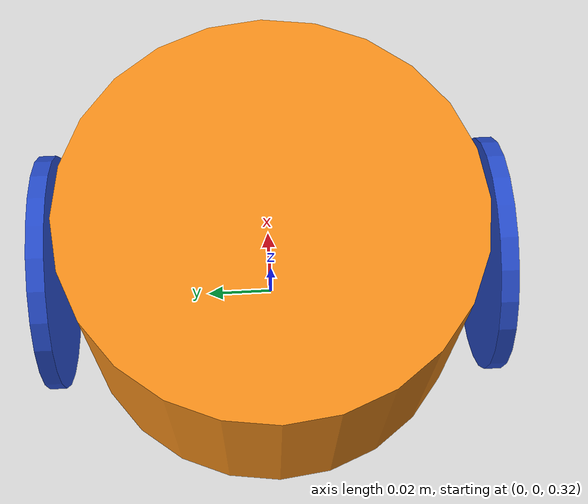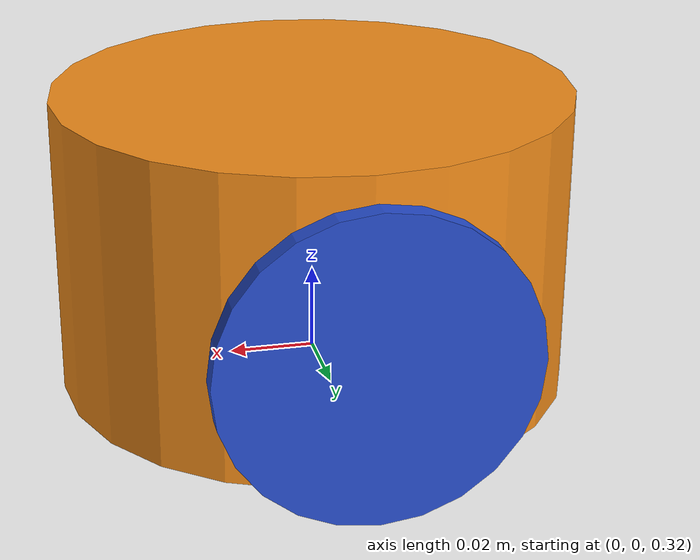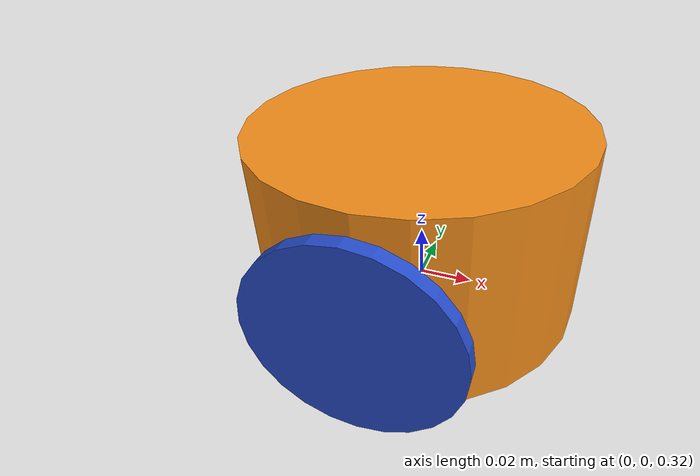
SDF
<?xml version="1.0" ?>
<sdf version="1.8">
  <world name="demo">
    <plugin
      filename="gz-sim-physics-system"
      name="gz::sim::systems::Physics">
    </plugin>
    <plugin
      filename="gz-sim-sensors-system"
      name="gz::sim::systems::Sensors">
      <render_engine>ogre2</render_engine>
    </plugin>
    <plugin
      filename="gz-sim-scene-broadcaster-system"
      name="gz::sim::systems::SceneBroadcaster">
    </plugin>
    <plugin
      filename="gz-sim-user-commands-system"
      name="gz::sim::systems::UserCommands">
    </plugin>
    <plugin
      filename="BasicSystem"
      name="ros_gz_example_gazebo::BasicSystem">
    </plugin>
    <plugin
      filename="FullSystem"
      name="ros_gz_example_gazebo::FullSystem">
    </plugin>

    <light name="sun" type="directional">
      <cast_shadows>true</cast_shadows>
      <pose>0 0 10 0 0 0</pose>
      <diffuse>0.8 0.8 0.8 1</diffuse>
      <specular>0.2 0.2 0.2 1</specular>
      <attenuation>
        <range>1000</range>
        <constant>0.9</constant>
        <linear>0.01</linear>
        <quadratic>0.001</quadratic>
      </attenuation>
      <direction>-0.5 0.1 -0.9</direction>
    </light>

    <model name="ground_plane">
      <static>true</static>
      <link name="link">
        <collision name="collision">
          <geometry>
            <plane>
              <normal>0 0 1</normal>
              <size>100 100</size>
            </plane>
          </geometry>
        </collision>
        <visual name="visual">
          <geometry>
            <plane>
              <normal>0 0 1</normal>
              <size>100 100</size>
            </plane>
          </geometry>
          <material>
            <ambient>0.8 0.8 0.8 1</ambient>
            <diffuse>0.8 0.8 0.8 1</diffuse>
            <specular>0.8 0.8 0.8 1</specular>
          </material>
        </visual>
      </link>
    </model>

    <model name="diff_drive">
      <self_collide>true</self_collide>
      <pose>0 0 0.35 0 0 0</pose>
      <include merge="true">
        <uri>package://kabot_description/models/diff_drive</uri>
      </include>

      <plugin
        filename="gz-sim-joint-state-publisher-system"
        name="gz::sim::systems::JointStatePublisher">
      </plugin>

      <plugin
        filename="gz-sim-pose-publisher-system"
        name="gz::sim::systems::PosePublisher">
        <publish_link_pose>true</publish_link_pose>
        <use_pose_vector_msg>true</use_pose_vector_msg>
        <static_publisher>true</static_publisher>
        <static_update_frequency>1</static_update_frequency>
      </plugin>

      <plugin
        filename="gz-sim-odometry-publisher-system"
        name="gz::sim::systems::OdometryPublisher">
        <odom_frame>diff_drive/odom</odom_frame>
        <robot_base_frame>diff_drive</robot_base_frame>
      </plugin>
    </model>

  </world>
</sdf>

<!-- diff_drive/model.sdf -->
<sdf version='1.11'>
  <model name='kabot'>
    <link name='base_link'>
      <inertial>
        <pose>0 0 0 0 0 0</pose>
        <mass>0.10000000000000001</mass>
        <inertia>
          <ixx>0.00013083333333333331</ixx>
          <ixy>0</ixy>
          <ixz>0</ixz>
          <iyy>0.00013083333333333331</iyy>
          <iyz>0</iyz>
          <izz>0.00018000000000000001</izz>
        </inertia>
      </inertial>
      <collision name='base_link_fixed_joint_lump__chassis_link_collision'>
        <pose>0 0 0 0 0 0</pose>
        <geometry>
          <cylinder>
            <length>0.070000000000000007</length>
            <radius>0.059999999999999998</radius>
          </cylinder>
        </geometry>
        <surface>
          <contact>
            <ode/>
          </contact>
          <friction>
            <ode/>
          </friction>
        </surface>
      </collision>
      <visual name='base_link_fixed_joint_lump__chassis_link_visual'>
        <pose>0 0 0 0 0 0</pose>
        <geometry>
          <cylinder>
            <length>0.070000000000000007</length>
            <radius>0.059999999999999998</radius>
          </cylinder>
        </geometry>
        <material>
          <script>
            <name>Gazebo/Orange</name>
            <uri>file://media/materials/scripts/gazebo.material</uri>
          </script>
          <diffuse>1 1 1 1</diffuse>
          <ambient>1 1 1 1</ambient>
        </material>
      </visual>
    </link>
    <joint name='left_wheel_joint' type='revolute'>
      <pose relative_to='base_link'>0 0.065000000000000002 -0.0050000000000000001 -1.5707963267948959 0 0</pose>
      <parent>base_link</parent>
      <child>left_wheel_link</child>
      <axis>
        <xyz>0 0 1</xyz>
        <limit>
          <lower>-inf</lower>
          <upper>inf</upper>
        </limit>
        <dynamics>
          <spring_reference>0</spring_reference>
          <spring_stiffness>0</spring_stiffness>
        </dynamics>
      </axis>
    </joint>
    <link name='left_wheel_link'>
      <pose relative_to='left_wheel_joint'>0 0 0 0 0 0</pose>
      <inertial>
        <pose>0 0 0 0 0 0</pose>
        <mass>0.10000000000000001</mass>
        <inertia>
          <ixx>3.0833333333333342e-05</ixx>
          <ixy>0</ixy>
          <ixz>0</ixz>
          <iyy>3.0833333333333342e-05</iyy>
          <iyz>0</iyz>
          <izz>6.1250000000000012e-05</izz>
        </inertia>
      </inertial>
      <collision name='left_wheel_link_collision'>
        <pose>0 0 0 0 0 0</pose>
        <geometry>
          <cylinder>
            <length>0.0050000000000000001</length>
            <radius>0.035000000000000003</radius>
          </cylinder>
        </geometry>
        <surface>
          <contact>
            <ode/>
          </contact>
          <friction>
            <ode/>
          </friction>
        </surface>
      </collision>
      <visual name='left_wheel_link_visual'>
        <pose>0 0 0 0 0 0</pose>
        <geometry>
          <cylinder>
            <length>0.0050000000000000001</length>
            <radius>0.035000000000000003</radius>
          </cylinder>
        </geometry>
        <material>
          <script>
            <name>Gazebo/Blue</name>
            <uri>file://media/materials/scripts/gazebo.material</uri>
          </script>
          <diffuse>0 0 1 1</diffuse>
          <ambient>0 0 1 1</ambient>
        </material>
      </visual>
    </link>
    <joint name='right_wheel_joint' type='revolute'>
      <pose relative_to='base_link'>0 -0.065000000000000002 -0.0050000000000000001 -1.5707963267948959 0 0</pose>
      <parent>base_link</parent>
      <child>right_wheel_link</child>
      <axis>
        <xyz>0 0 1</xyz>
        <limit>
          <lower>-inf</lower>
          <upper>inf</upper>
        </limit>
        <dynamics>
          <spring_reference>0</spring_reference>
          <spring_stiffness>0</spring_stiffness>
        </dynamics>
      </axis>
    </joint>
    <link name='right_wheel_link'>
      <pose relative_to='right_wheel_joint'>0 0 0 0 0 0</pose>
      <inertial>
        <pose>0 0 0 0 0 0</pose>
        <mass>0.10000000000000001</mass>
        <inertia>
          <ixx>3.0833333333333342e-05</ixx>
          <ixy>0</ixy>
          <ixz>0</ixz>
          <iyy>3.0833333333333342e-05</iyy>
          <iyz>0</iyz>
          <izz>6.1250000000000012e-05</izz>
        </inertia>
      </inertial>
      <collision name='right_wheel_link_collision'>
        <pose>0 0 0 0 0 0</pose>
        <geometry>
          <cylinder>
            <length>0.0050000000000000001</length>
            <radius>0.035000000000000003</radius>
          </cylinder>
        </geometry>
        <surface>
          <contact>
            <ode/>
          </contact>
          <friction>
            <ode/>
          </friction>
        </surface>
      </collision>
      <visual name='right_wheel_link_visual'>
        <pose>0 0 0 0 0 0</pose>
        <geometry>
          <cylinder>
            <length>0.0050000000000000001</length>
            <radius>0.035000000000000003</radius>
          </cylinder>
        </geometry>
        <material>
          <script>
            <name>Gazebo/Blue</name>
            <uri>file://media/materials/scripts/gazebo.material</uri>
          </script>
          <diffuse>0 0 1 1</diffuse>
          <ambient>0 0 1 1</ambient>
        </material>
      </visual>
    </link>
    <plugin name='ignition::gazebo::systems::DiffDrive' filename='ignition-gazebo-diff-drive-system'>
      <left_joint>left_wheel_joint</left_joint>
      <right_joint>right_wheel_joint</right_joint>
      <wheel_separation>0.13</wheel_separation>
      <wheel_radius>0.35</wheel_radius>
      <odom_publish_frequency>1</odom_publish_frequency>
      <max_linear_acceleration>1</max_linear_acceleration>
      <min_linear_acceleration>-1</min_linear_acceleration>
      <max_angular_acceleration>2</max_angular_acceleration>
      <min_angular_acceleration>-2</min_angular_acceleration>
      <max_linear_velocity>0.5</max_linear_velocity>
      <min_linear_velocity>-0.5</min_linear_velocity>
      <max_angular_velocity>1</max_angular_velocity>
      <min_angular_velocity>-1</min_angular_velocity>
    </plugin>
    <frame name='chassis_joint' attached_to='base_link'>
      <pose>0 0 0 0 0 0</pose>
    </frame>
    <frame name='chassis_link' attached_to='chassis_joint'>
      <pose>0 0 0 0 0 0</pose>
    </frame>
    <frame name='footprint_joint' attached_to='base_link'>
      <pose>0 0 -0.035000000000000003 0 0 0</pose>
    </frame>
    <frame name='footprint_link' attached_to='footprint_joint'>
      <pose>0 0 0 0 0 0</pose>
    </frame>
  </model>
</sdf>
